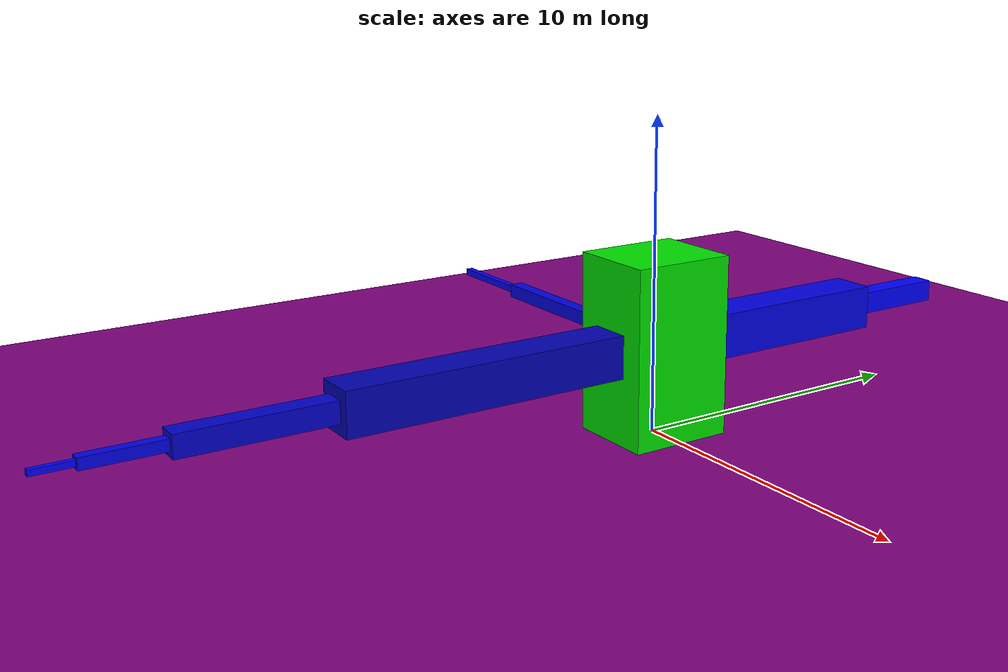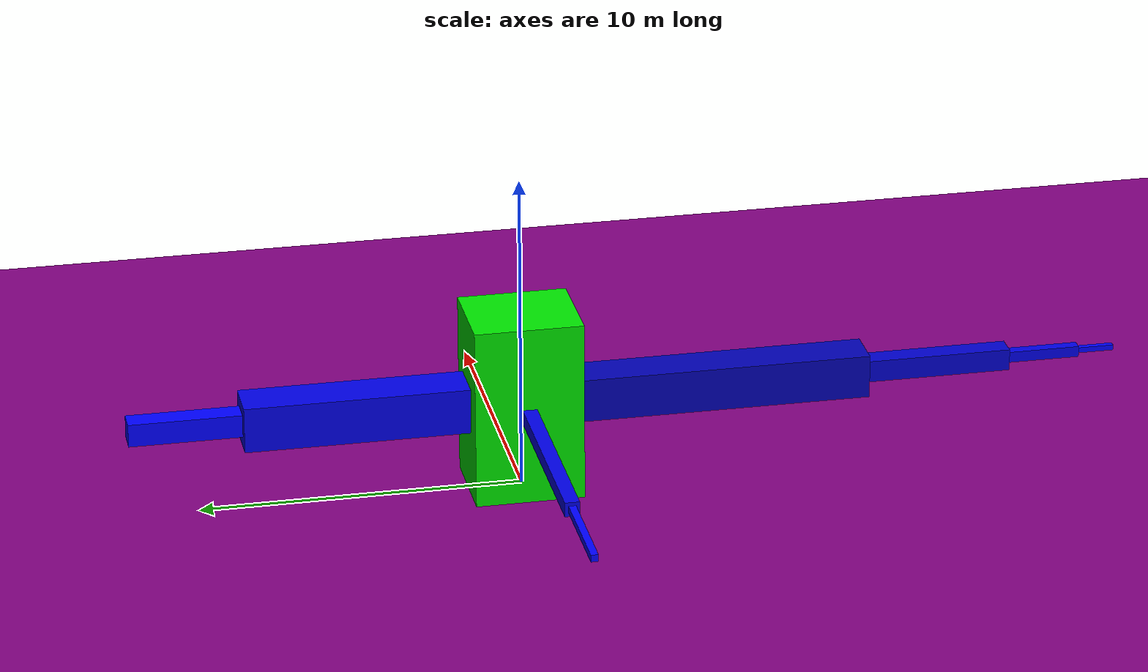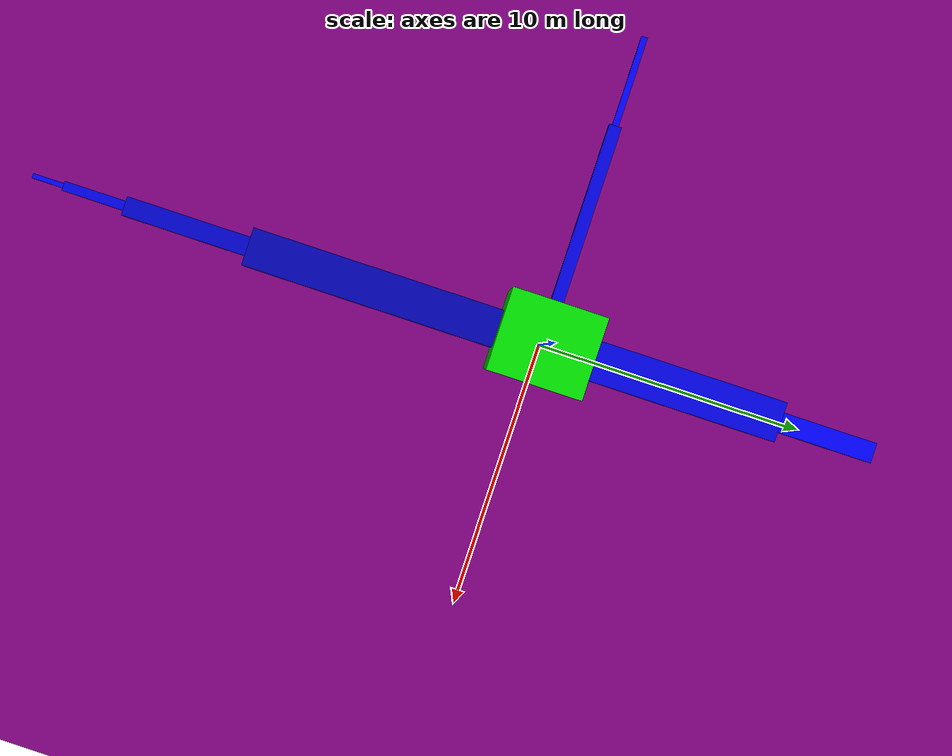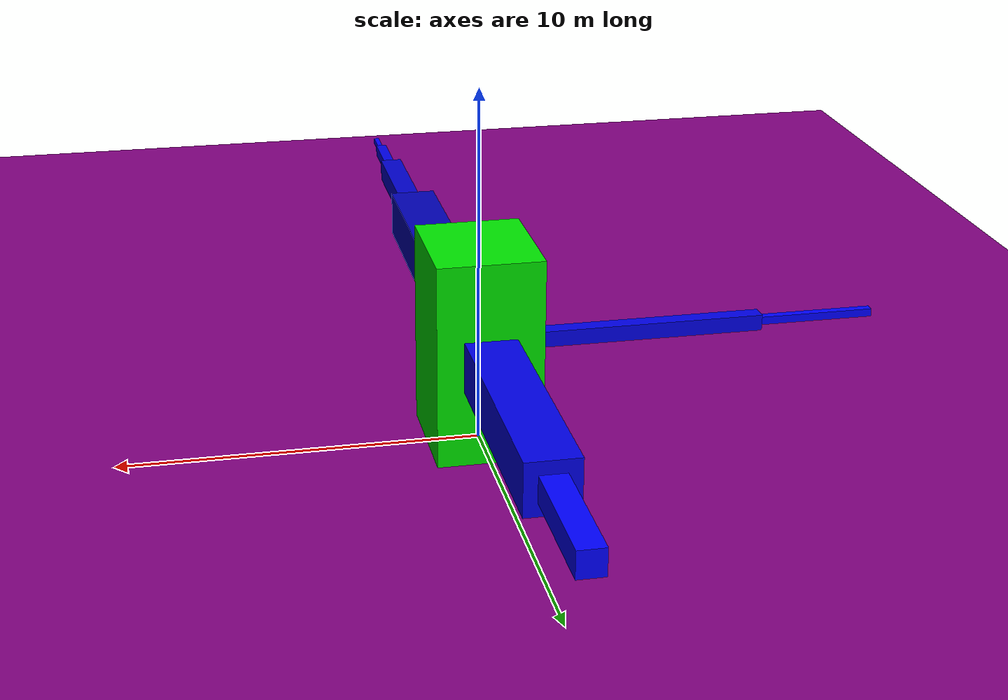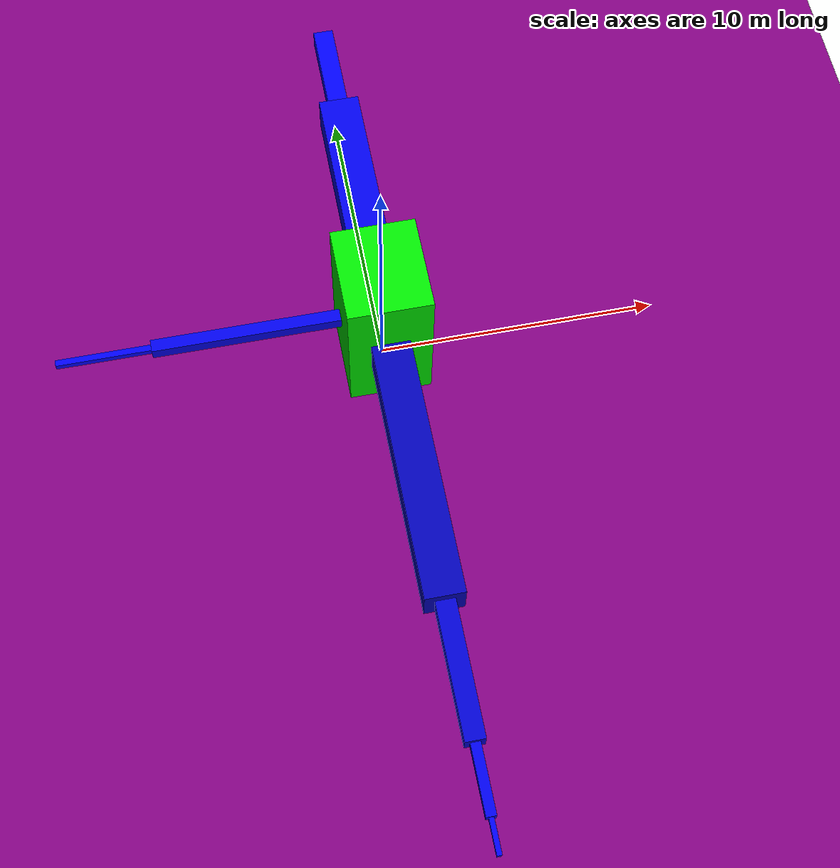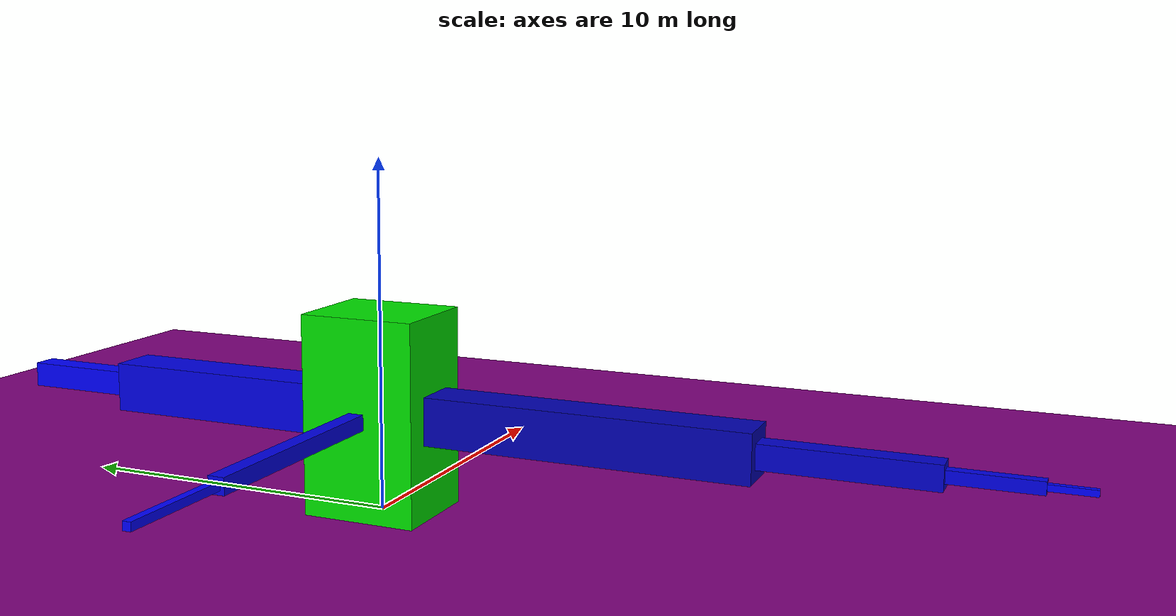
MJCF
<mujoco model="unnamed_model">
  <option timestep="0.01" integrator="RK4">
    <flag energy="enable" sensornoise="enable"/>
  </option>
  <default>
    <default class="/"/>
  </default>
  <worldbody>
    <light name="world_light" class="/" pos="0 0 10" dir="0 0 -1" diffuse="0.5 0.5 0.5"/>
    <geom name="ground_plane" class="/" type="plane" size="0 0 1" rgba="0.5 0 0.5 1"/>
    <body name="core_body" pos="0 0 2.8709988649503067">
      <geom name="core_geom" class="/" type="box" size="1.4621836470549465 1.6899701319863778 2.8709988649503067" rgba="0 0.90000000000000002 0 1"/>
      <joint name="first" class="/" type="free"/>
      <body name="front_limb_27" pos="0 -6.260726233977941 0">
        <joint name="front_shoulder_27" class="/" type="ball" pos="0 4.570756101991563 0"/>
        <geom name="front_arm_27" class="/" type="box" size="0.68388355050699767 4.570756101991563 0.68388355050699767" rgba="0 0 0.69999999999999996 1" mass="1"/>
        <body name="front_limb_28" pos="0 -6.8561341529873445 0">
          <joint name="front_shoulder_28" class="/" type="ball" pos="0 2.2853780509957815 0"/>
          <geom name="front_arm_28" class="/" type="box" size="0.34194177525349884 2.2853780509957815 0.34194177525349884" rgba="0 0 0.80000000000000004 1" mass="1"/>
          <body name="front_limb_29" pos="0 -3.4280670764936723 0">
            <joint name="front_shoulder_29" class="/" type="ball" pos="0 1.1426890254978908 0"/>
            <geom name="front_arm_29" class="/" type="box" size="0.17097088762674942 1.1426890254978908 0.17097088762674942" rgba="0 0 0.90000000000000002 1" mass="1"/>
            <body name="front_limb_30" pos="0 -1.7140335382468361 0">
              <joint name="front_shoulder_30" class="/" type="ball" pos="0 0.57134451274894538 0"/>
              <geom name="front_arm_30" class="/" type="box" size="0.085485443813374709 0.57134451274894538 0.085485443813374709" rgba="0 0 1 1" mass="1"/>
            </body>
          </body>
        </body>
      </body>
      <body name="left_limb_31" pos="-4.7508532862132142 0 0">
        <joint name="left_shoulder_31" class="/" type="ball" pos="3.2886696391582682 0 0"/>
        <geom name="left_arm_31" class="/" type="box" size="3.2886696391582682 0.22540353800458113 0.22540353800458113" rgba="0 0 0.90000000000000002 1" mass="1"/>
        <body name="left_limb_32" pos="-4.9330044587374022 0 0">
          <joint name="left_shoulder_32" class="/" type="ball" pos="1.6443348195791341 0 0"/>
          <geom name="left_arm_32" class="/" type="box" size="1.6443348195791341 0.11270176900229056 0.11270176900229056" rgba="0 0 1 1" mass="1"/>
        </body>
      </body>
      <body name="back_limb_33" pos="0 5.1670706015277617 0">
        <joint name="back_shoulder_33" class="/" type="ball" pos="0 -3.4771004695413836 0"/>
        <geom name="back_arm_33" class="/" type="box" size="0.71993055856345789 3.4771004695413836 0.71993055856345789" rgba="0 0 0.90000000000000002 1" mass="1"/>
        <body name="back_limb_34" pos="0 5.2156507043120754 0">
          <joint name="back_shoulder_34" class="/" type="ball" pos="0 -1.7385502347706918 0"/>
          <geom name="back_arm_34" class="/" type="box" size="0.35996527928172894 1.7385502347706918 0.35996527928172894" rgba="0 0 1 1" mass="1"/>
        </body>
      </body>
    </body>
  </worldbody>
  <actuator>
    <position name="frontxy_3" class="/" group="0" gear="0 0 1" joint="front_shoulder_27" kp="5"/>
    <position name="frontxz_3" class="/" group="0" gear="0 1 0" joint="front_shoulder_27" kp="5"/>
    <position name="frontyz_3" class="/" group="0" gear="1 0 0" joint="front_shoulder_27" kp="5"/>
    <position name="frontxy_2" class="/" group="0" gear="0 0 1" joint="front_shoulder_28" kp="5"/>
    <position name="frontxz_2" class="/" group="0" gear="0 1 0" joint="front_shoulder_28" kp="5"/>
    <position name="frontyz_2" class="/" group="0" gear="1 0 0" joint="front_shoulder_28" kp="5"/>
    <position name="frontxy_1" class="/" group="0" gear="0 0 1" joint="front_shoulder_29" kp="5"/>
    <position name="frontxz_1" class="/" group="0" gear="0 1 0" joint="front_shoulder_29" kp="5"/>
    <position name="frontyz_1" class="/" group="0" gear="1 0 0" joint="front_shoulder_29" kp="5"/>
    <position name="frontxy_0" class="/" group="0" gear="0 0 1" joint="front_shoulder_30" kp="5"/>
    <position name="frontxz_0" class="/" group="0" gear="0 1 0" joint="front_shoulder_30" kp="5"/>
    <position name="frontyz_0" class="/" group="0" gear="1 0 0" joint="front_shoulder_30" kp="5"/>
    <position name="leftxy_1" class="/" group="3" gear="0 0 1" joint="left_shoulder_31" kp="5"/>
    <position name="leftxz_1" class="/" group="3" gear="0 1 0" joint="left_shoulder_31" kp="5"/>
    <position name="leftyz_1" class="/" group="3" gear="1 0 0" joint="left_shoulder_31" kp="5"/>
    <position name="leftxy_0" class="/" group="3" gear="0 0 1" joint="left_shoulder_32" kp="5"/>
    <position name="leftxz_0" class="/" group="3" gear="0 1 0" joint="left_shoulder_32" kp="5"/>
    <position name="leftyz_0" class="/" group="3" gear="1 0 0" joint="left_shoulder_32" kp="5"/>
    <position name="backxy_1" class="/" group="2" gear="0 0 1" joint="back_shoulder_33" kp="5"/>
    <position name="backxz_1" class="/" group="2" gear="0 1 0" joint="back_shoulder_33" kp="5"/>
    <position name="backyz_1" class="/" group="2" gear="1 0 0" joint="back_shoulder_33" kp="5"/>
    <position name="backxy_0" class="/" group="2" gear="0 0 1" joint="back_shoulder_34" kp="5"/>
    <position name="backxz_0" class="/" group="2" gear="0 1 0" joint="back_shoulder_34" kp="5"/>
    <position name="backyz_0" class="/" group="2" gear="1 0 0" joint="back_shoulder_34" kp="5"/>
  </actuator>
</mujoco>
